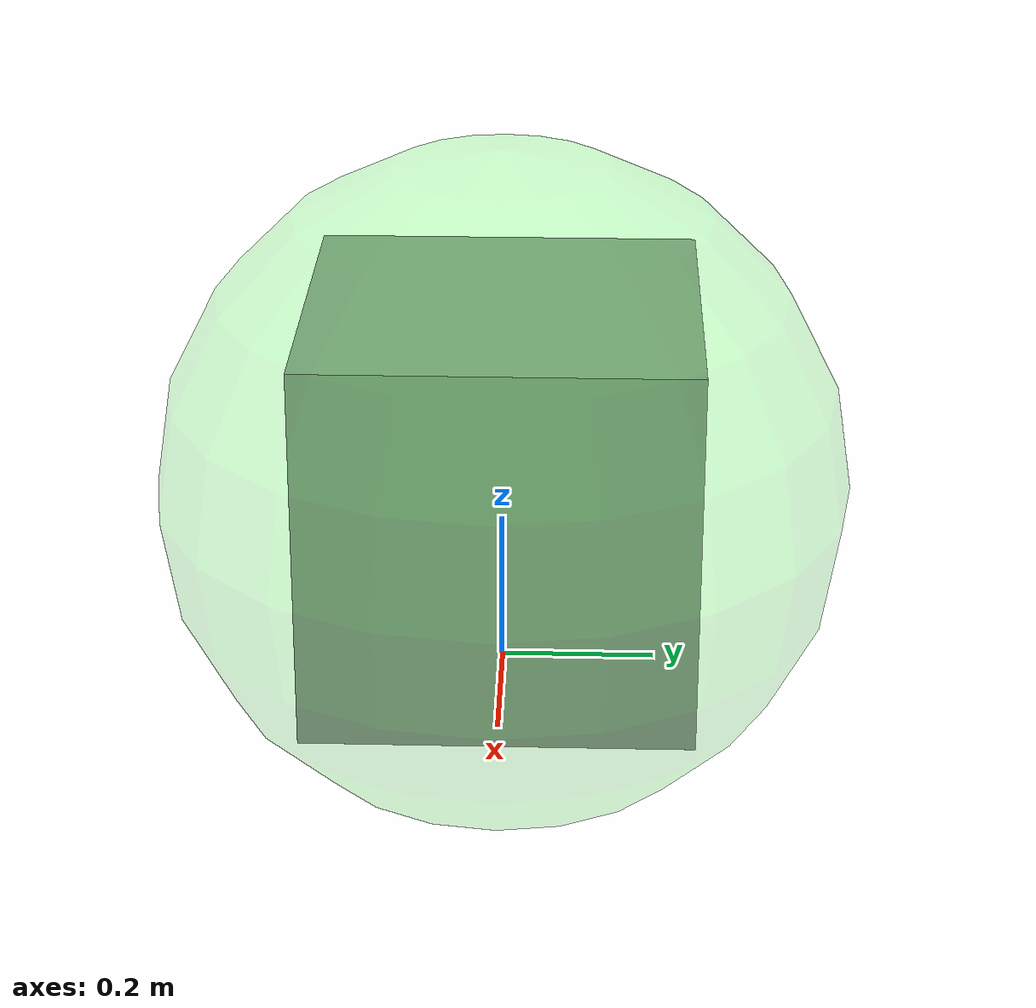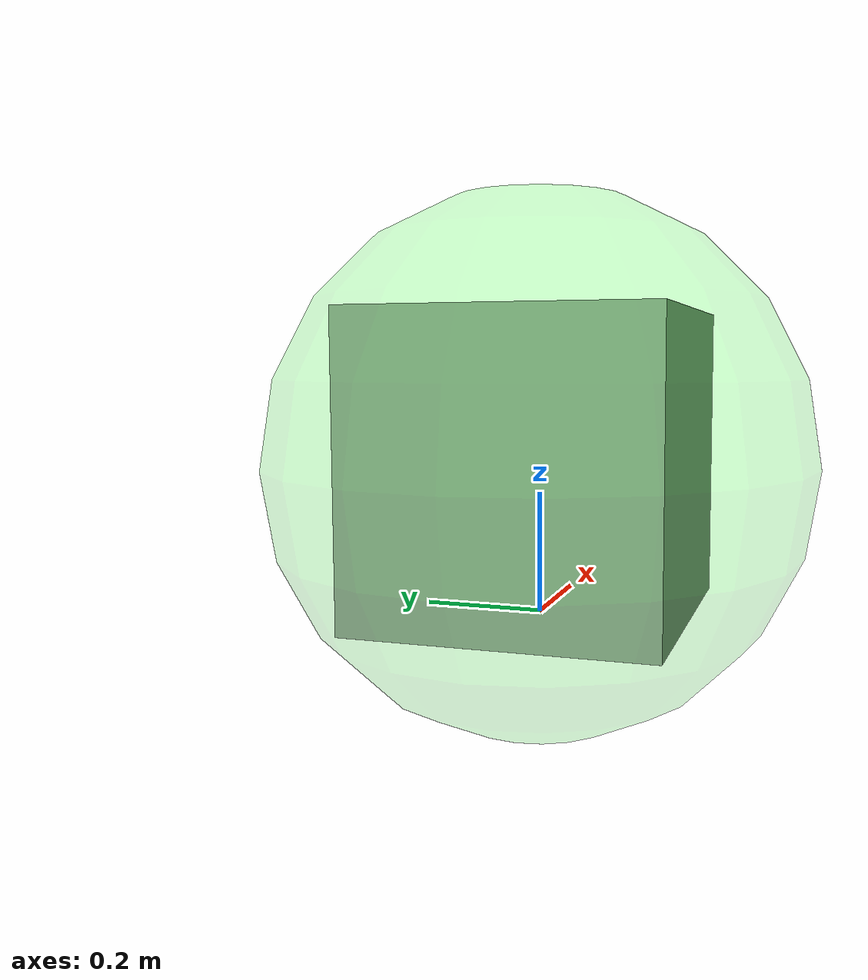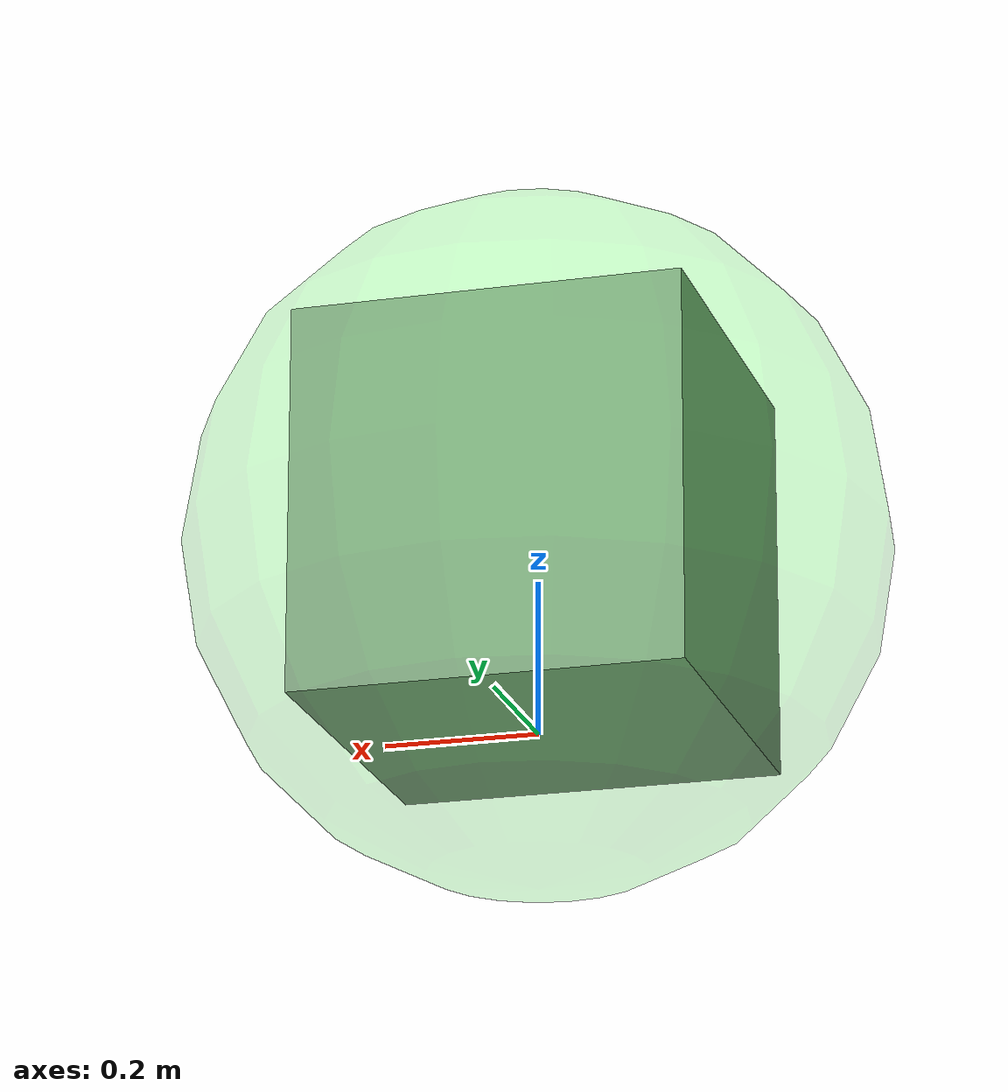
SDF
<?xml version="1.0" ?>
<sdf version="1.6">
  <model name="vis_cue_attract">
    <static>false</static>
    <pose>0 0 0.25 0 0 0</pose>
    <link name='vis_cue_attract'>
      <inertial>
        <mass>1</mass>
        <inertia>
          <ixx>0.166667</ixx>
          <ixy>0</ixy>
          <ixz>0</ixz>
          <iyy>0.166667</iyy>
          <iyz>0</iyz>
          <izz>0.166667</izz>
        </inertia>
      </inertial>
      <collision name='collision'>
        <geometry>
          <box>
            <size>0.5 0.5 0.5</size>
          </box>
        </geometry>
        <max_contacts>10</max_contacts>
        <surface>
          <contact>
            <ode/>
          </contact>
          <bounce/>
          <friction>
            <torsional>
              <ode/>
            </torsional>
            <ode/>
          </friction>
        </surface>
      </collision>
      <visual name='box_visual'>
        <geometry>
          <box>
            <size>0.5 0.5 0.5</size>
          </box>
        </geometry>
        <material>
          <script>
            <name>Gazebo/Grey</name>
            <uri>file://media/materials/scripts/gazebo.material</uri>
          </script>
        </material>
      </visual>
      <visual name='cue_visual'>
        <geometry>
          <sphere>
            <radius>0.45</radius>
          </sphere>
        </geometry>
        <material>
          <ambient>0 1 0 0.15</ambient>
          <diffuse>0 1 0 0.15</diffuse>
          <specular>0 1 0 0.15</specular>
          <emissive>0 0 0 0</emissive>
        </material>
      </visual>
      <self_collide>0</self_collide>
      <kinematic>0</kinematic>
    </link>
  </model>
</sdf>
